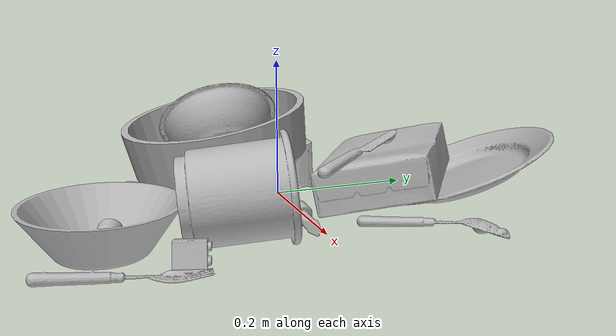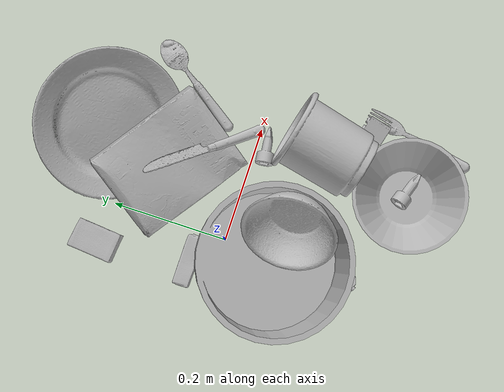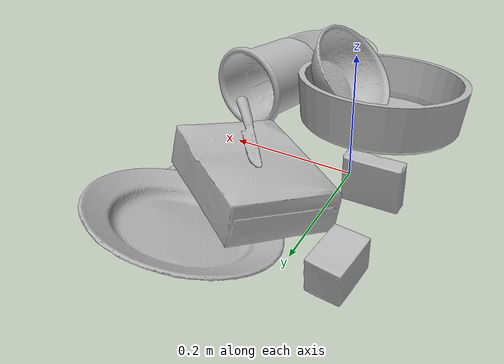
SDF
<sdf version="1.4">
  <world name="default">
    <light name="light1" type="point">
      <pose>0 0 1 0 0 0</pose>
      <diffuse>3 3 3 1</diffuse>
      <specular>3 3 3 1</specular>
    </light>
    <light name="light2" type="point">
      <pose>0 0.5 2 0 0 0</pose>
      <diffuse>1 1 1 1</diffuse>
      <specular>1 1 1 1</specular>
    </light>
    <light name="light3" type="point">
      <pose>0 0.5 2 0 0 0</pose>
      <diffuse>3 3 3 1</diffuse>
      <specular>3 3 3 1</specular>
    </light>
    <scene>
      <ambient>0.7 0.7 0.7</ambient>
    </scene>
    <model name="plate1">
      <link name="link_plate1">
        <collision name="default">
          <geometry>
            <mesh>
              <uri>model://plate/collision_meshes/collision.obj</uri>
              <scale>1.0 1.0 1.0</scale>
            </mesh>
          </geometry>
          <surface>
            <friction>
              <ode>
                <mu>0.5</mu>
                <mu2>0.5</mu2>
              </ode>
            </friction>
          <contact>
        <ode>
            <max_vel>0</max_vel>
            <min_depth>0.0001</min_depth>
            <kp>1e8</kp>
        </ode>
    </contact></surface>
        </collision>
        <visual name="default">
          <geometry>
            <mesh>
              <uri>model://plate/visual_meshes/visual.dae</uri>
              <scale>1.0 1.0 1.0</scale>
            </mesh>
          </geometry>
        </visual>
        <inertial>
          <mass>0.20059238374233246</mass>
          <pose>-0.0006044621695764363 0.00027825910365208983 -0.001056200242601335 0.002218800652723057 -0.0032254723094637602 0.45260588699646775</pose>
          <inertia>
            <ixx>0.00093837525</ixx>
            <iyy>0.0009294</iyy>
            <izz>0.0018353215</izz>
            <ixy>0</ixy>
            <ixz>0</ixz>
            <iyz>0</iyz>
          </inertia>
        </inertial>
      </link>
      <pose>0.12527242302894592 0.2483924776315689 0.042967166751623154 0.35728717116314 -0.1274658786225629 -0.0936527890748937</pose>
    </model>
    <model name="plate2">
      <link name="link_plate2">
        <collision name="default">
          <geometry>
            <mesh>
              <uri>model://pan_tefal/collision_meshes/collision.obj</uri>
              <scale>1.0 1.0 1.0</scale>
            </mesh>
          </geometry>
          <surface>
            <friction>
              <ode>
                <mu>0.5</mu>
                <mu2>0.5</mu2>
              </ode>
            </friction>
          <contact>
        <ode>
            <max_vel>0</max_vel>
            <min_depth>0.0001</min_depth>
            <kp>1e8</kp>
        </ode>
    </contact></surface>
        </collision>
        <visual name="default">
          <geometry>
            <mesh>
              <uri>model://pan_tefal/visual_meshes/visual.dae</uri>
              <scale>1.0 1.0 1.0</scale>
            </mesh>
          </geometry>
        </visual>
        <inertial>
          <mass>0.5801199674606323</mass>
          <pose>-0.00018002555589191616 3.279062366345897e-05 -0.008514936082065105 0.0008190222895173471 -0.0003301392673675887 -0.3318501085377774</pose>
          <inertia>
            <ixx>0.00400454</ixx>
            <iyy>0.004030358</iyy>
            <izz>0.0073715877</izz>
            <ixy>0</ixy>
            <ixz>0</ixz>
            <iyz>0</iyz>
          </inertia>
        </inertial>
      </link>
      <pose>-0.013083591125905514 -0.08641422539949417 0.08942525088787079 0.13123504482527573 -0.11690016700753639 0.879767148141283</pose>
    </model>
    <model name="bowl1">
      <link name="link_bowl1">
        <collision name="default">
          <geometry>
            <mesh>
              <uri>model://bowl/collision_meshes/collision.obj</uri>
              <scale>1.0 1.0 1.0</scale>
            </mesh>
          </geometry>
          <surface>
            <friction>
              <ode>
                <mu>0.5</mu>
                <mu2>0.5</mu2>
              </ode>
            </friction>
          <contact>
        <ode>
            <max_vel>0</max_vel>
            <min_depth>0.0001</min_depth>
            <kp>1e8</kp>
        </ode>
    </contact></surface>
        </collision>
        <visual name="default">
          <geometry>
            <mesh>
              <uri>model://bowl/visual_meshes/visual.dae</uri>
              <scale>1.0 1.0 1.0</scale>
            </mesh>
          </geometry>
        </visual>
        <inertial>
          <mass>0.055578216910362244</mass>
          <pose>0.00020445502013899386 -0.0010302060982212424 -0.000804265437182039 -0.015764048263850368 0.014546844804774466 0.7140432473852318</pose>
          <inertia>
            <ixx>0.00012766755</ixx>
            <iyy>0.000124815</iyy>
            <izz>0.00021478078</izz>
            <ixy>0</ixy>
            <ixz>0</ixz>
            <iyz>0</iyz>
          </inertia>
        </inertial>
      </link>
      <pose>0.05635892227292061 -0.09816696494817734 0.1083502471446991 -0.7880651244756334 -0.21147186440818558 1.3549172133267926</pose>
    </model>
    <model name="bowl2">
      <link name="link_bowl2">
        <collision name="default">
          <geometry>
            <mesh>
              <uri>model://bowl_a/collision_meshes/collision.obj</uri>
              <scale>1.0 1.0 1.0</scale>
            </mesh>
          </geometry>
          <surface>
            <friction>
              <ode>
                <mu>0.5</mu>
                <mu2>0.5</mu2>
              </ode>
            </friction>
          <contact>
        <ode>
            <max_vel>0</max_vel>
            <min_depth>0.0001</min_depth>
            <kp>1e8</kp>
        </ode>
    </contact></surface>
        </collision>
        <visual name="default">
          <geometry>
            <mesh>
              <uri>model://bowl_a/visual_meshes/visual.dae</uri>
              <scale>1.0 1.0 1.0</scale>
            </mesh>
          </geometry>
        </visual>
        <inertial>
          <mass>0.31475314497947693</mass>
          <pose>0.00027867438620887697 4.730821092380211e-05 -0.0013765294570475817 -0.0009805369688078041 -0.0010938258688624044 -0.19123886294168949</pose>
          <inertia>
            <ixx>0.00089611666</ixx>
            <iyy>0.00090161816</iyy>
            <izz>0.0015937777</izz>
            <ixy>0</ixy>
            <ixz>0</ixz>
            <iyz>0</iyz>
          </inertia>
        </inertial>
      </link>
      <pose>0.1651432067155838 -0.27261883020401 0.03038300760090351 -3.9339843453447236e-08 3.3606648547721346e-08 2.9019707074453662</pose>
    </model>
    <model name="silverware1">
      <link name="link_silverware1">
        <collision name="default">
          <geometry>
            <mesh>
              <uri>model://spoon/collision_meshes/collision.obj</uri>
              <scale>1.0 1.0 1.0</scale>
            </mesh>
          </geometry>
          <surface>
            <friction>
              <ode>
                <mu>0.5</mu>
                <mu2>0.5</mu2>
              </ode>
            </friction>
          <contact>
        <ode>
            <max_vel>0</max_vel>
            <min_depth>0.0001</min_depth>
            <kp>1e8</kp>
        </ode>
    </contact></surface>
        </collision>
        <visual name="default">
          <geometry>
            <mesh>
              <uri>model://spoon/visual_meshes/visual.dae</uri>
              <scale>1.0 1.0 1.0</scale>
            </mesh>
          </geometry>
        </visual>
        <inertial>
          <mass>0.019504988566040993</mass>
          <pose>-0.005526313092559576 -0.0016034174477681518 -0.0007271654321812093 0.03521671064592188 -0.039065845080026425 0.006150613244710899</pose>
          <inertia>
            <ixx>1.0848988e-06</ixx>
            <iyy>7.421582e-05</iyy>
            <izz>7.4750846e-05</izz>
            <ixy>0</ixy>
            <ixz>0</ixz>
            <iyz>0</iyz>
          </inertia>
        </inertial>
      </link>
      <pose>0.23956634104251862 0.1294073611497879 0.010133709758520126 3.104956935355799 -0.06197735107081095 0.9615909823485341</pose>
    </model>
    <model name="box1">
      <link name="link_box1">
        <collision name="default">
          <geometry>
            <mesh>
              <uri>model://cracker_box/collision_meshes/collision.obj</uri>
              <scale>1.0 1.0 1.0</scale>
            </mesh>
          </geometry>
          <surface>
            <friction>
              <ode>
                <mu>0.5</mu>
                <mu2>0.5</mu2>
              </ode>
            </friction>
          <contact>
        <ode>
            <max_vel>0</max_vel>
            <min_depth>0.0001</min_depth>
            <kp>1e8</kp>
        </ode>
    </contact></surface>
        </collision>
        <visual name="default">
          <geometry>
            <mesh>
              <uri>model://cracker_box/visual_meshes/visual.dae</uri>
              <scale>1.0 1.0 1.0</scale>
            </mesh>
          </geometry>
        </visual>
        <inertial>
          <mass>2.5078790187835693</mass>
          <pose>0.0009464150061830878 0.00025434247800149024 -0.0017029535956680775 -0.00031620768203149627 -0.01110648960041945 0.002546794303792924</pose>
          <inertia>
            <ixx>0.0063789245</ixx>
            <iyy>0.010532858</iyy>
            <izz>0.015031353</izz>
            <ixy>0</ixy>
            <ixz>0</ixz>
            <iyz>0</iyz>
          </inertia>
        </inertial>
      </link>
      <pose>0.09415781497955322 0.13074110448360443 0.051987677812576294 -0.23675940012362207 -8.870801045290992e-05 2.5261463822886405</pose>
    </model>
    <model name="box2">
      <link name="link_box2">
        <collision name="default">
          <geometry>
            <mesh>
              <uri>model://gelatin_box/collision_meshes/collision.obj</uri>
              <scale>1.0 1.0 1.0</scale>
            </mesh>
          </geometry>
          <surface>
            <friction>
              <ode>
                <mu>0.5</mu>
                <mu2>0.5</mu2>
              </ode>
            </friction>
          <contact>
        <ode>
            <max_vel>0</max_vel>
            <min_depth>0.0001</min_depth>
            <kp>1e8</kp>
        </ode>
    </contact></surface>
        </collision>
        <visual name="default">
          <geometry>
            <mesh>
              <uri>model://gelatin_box/visual_meshes/visual.dae</uri>
              <scale>1.0 1.0 1.0</scale>
            </mesh>
          </geometry>
        </visual>
        <inertial>
          <mass>0.1847851723432541</mass>
          <pose>0.0004319618456065655 0.00011156872642459348 -0.0003640321083366871 -0.001050372098056681 -0.004755818221834168 0.016440563197305347</pose>
          <inertia>
            <ixx>0.00013044327</ixx>
            <iyy>9.317494e-05</iyy>
            <izz>0.0001985637</izz>
            <ixy>0</ixy>
            <ixz>0</ixz>
            <iyz>0</iyz>
          </inertia>
        </inertial>
      </link>
      <pose>-0.05374725162982941 0.04650179669260979 0.036447957158088684 2.2943953545653537 -1.539327550626128 -0.7275927228326703</pose>
    </model>
    <model name="cup1">
      <link name="link_cup1">
        <collision name="default">
          <geometry>
            <mesh>
              <uri>model://d_cups/collision_meshes/collision.obj</uri>
              <scale>2.0 2.0 2.0</scale>
            </mesh>
          </geometry>
          <surface>
            <friction>
              <ode>
                <mu>0.5</mu>
                <mu2>0.5</mu2>
              </ode>
            </friction>
          <contact>
        <ode>
            <max_vel>0</max_vel>
            <min_depth>0.0001</min_depth>
            <kp>1e8</kp>
        </ode>
    </contact></surface>
        </collision>
        <visual name="default">
          <geometry>
            <mesh>
              <uri>model://d_cups/visual_meshes/visual.dae</uri>
              <scale>2.0 2.0 2.0</scale>
            </mesh>
          </geometry>
        </visual>
        <inertial>
          <mass>0.47328615188598633</mass>
          <pose>0.0016136143822222948 0.0038234798703342676 -0.004533303435891867 0.24012870248045765 -0.247092443015796 0.5942312682521343</pose>
          <inertia>
            <ixx>0.0015850074</ixx>
            <iyy>0.0015804201</iyy>
            <izz>0.0014347013</izz>
            <ixy>0</ixy>
            <ixz>0</ixz>
            <iyz>0</iyz>
          </inertia>
        </inertial>
      </link>
      <pose>0.19613713026046753 -0.11595935374498367 0.06490753591060638 1.421122435291208 0.8712972215811554 2.8031944718609445</pose>
    </model>
    <model name="silverware2">
      <link name="link_silverware2">
        <collision name="default">
          <geometry>
            <mesh>
              <uri>model://knife/collision_meshes/collision.obj</uri>
              <scale>1.0 1.0 1.0</scale>
            </mesh>
          </geometry>
          <surface>
            <friction>
              <ode>
                <mu>0.5</mu>
                <mu2>0.5</mu2>
              </ode>
            </friction>
          <contact>
        <ode>
            <max_vel>0</max_vel>
            <min_depth>0.0001</min_depth>
            <kp>1e8</kp>
        </ode>
    </contact></surface>
        </collision>
        <visual name="default">
          <geometry>
            <mesh>
              <uri>model://knife/visual_meshes/visual.dae</uri>
              <scale>1.0 1.0 1.0</scale>
            </mesh>
          </geometry>
        </visual>
        <inertial>
          <mass>0.03430156037211418</mass>
          <pose>-0.02378525398671627 0.0015275129117071629 5.062017953605391e-05 0.07305950900181668 0.01724842494985857 -0.007409825116106198</pose>
          <inertia>
            <ixx>9.736174e-07</ixx>
            <iyy>0.00013178105</iyy>
            <izz>0.00013209462</izz>
            <ixy>0</ixy>
            <ixz>0</ixz>
            <iyz>0</iyz>
          </inertia>
        </inertial>
      </link>
      <pose>0.1305592656135559 0.07910942286252975 0.08717948198318481 -0.004398024445419052 -0.08685234190261164 2.223211018070685</pose>
    </model>
    <model name="silverware3">
      <link name="link_silverware3">
        <collision name="default">
          <geometry>
            <mesh>
              <uri>model://fork/collision_meshes/collision.obj</uri>
              <scale>1.0 1.0 1.0</scale>
            </mesh>
          </geometry>
          <surface>
            <friction>
              <ode>
                <mu>0.5</mu>
                <mu2>0.5</mu2>
              </ode>
            </friction>
          <contact>
        <ode>
            <max_vel>0</max_vel>
            <min_depth>0.0001</min_depth>
            <kp>1e8</kp>
        </ode>
    </contact></surface>
        </collision>
        <visual name="default">
          <geometry>
            <mesh>
              <uri>model://fork/visual_meshes/visual.dae</uri>
              <scale>1.0 1.0 1.0</scale>
            </mesh>
          </geometry>
        </visual>
        <inertial>
          <mass>0.014111565425992012</mass>
          <pose>-0.02957005426287651 0.0004658825055230409 0.00032188615296036005 -0.01355195006397287 -0.010977841645129428 0.014453906946454091</pose>
          <inertia>
            <ixx>4.9469025e-07</ixx>
            <iyy>3.684124e-05</iyy>
            <izz>3.7062495e-05</izz>
            <ixy>0</ixy>
            <ixz>0</ixz>
            <iyz>0</iyz>
          </inertia>
        </inertial>
      </link>
      <pose>0.26440131664276123 -0.26365065574645996 0.005227225832641125 -0.017664883881012946 0.05003607827566225 1.3584649259859336</pose>
    </model>
    <model name="toy1">
      <link name="link_toy1">
        <collision name="default">
          <geometry>
            <mesh>
              <uri>model://b_lego_duplo/collision_meshes/collision.obj</uri>
              <scale>1.0 1.0 1.0</scale>
            </mesh>
          </geometry>
          <surface>
            <friction>
              <ode>
                <mu>0.5</mu>
                <mu2>0.5</mu2>
              </ode>
            </friction>
          <contact>
        <ode>
            <max_vel>0</max_vel>
            <min_depth>0.0001</min_depth>
            <kp>1e8</kp>
        </ode>
    </contact></surface>
        </collision>
        <visual name="default">
          <geometry>
            <mesh>
              <uri>model://b_lego_duplo/visual_meshes/visual.dae</uri>
              <scale>1.0 1.0 1.0</scale>
            </mesh>
          </geometry>
        </visual>
        <inertial>
          <mass>0.029451588168740273</mass>
          <pose>-0.00011053002526750788 -9.152366146736313e-06 0.0019294293597340584 -0.03749525813168218 -0.026353287435260622 0.45191626186006195</pose>
          <inertia>
            <ixx>6.0274892e-06</ixx>
            <iyy>6.0680068e-06</iyy>
            <izz>5.3702943e-06</izz>
            <ixy>0</ixy>
            <ixz>0</ixz>
            <iyz>0</iyz>
          </inertia>
        </inertial>
      </link>
      <pose>0.257998526096344 -0.18524698913097382 0.01984529383480549 -1.6536262985611885 1.2980012193448942 -0.33983194273696865</pose>
    </model>
    <model name="toy2">
      <link name="link_toy2">
        <collision name="default">
          <geometry>
            <mesh>
              <uri>model://foam_brick/collision_meshes/collision.obj</uri>
              <scale>1.0 1.0 1.0</scale>
            </mesh>
          </geometry>
          <surface>
            <friction>
              <ode>
                <mu>0.5</mu>
                <mu2>0.5</mu2>
              </ode>
            </friction>
          <contact>
        <ode>
            <max_vel>0</max_vel>
            <min_depth>0.0001</min_depth>
            <kp>1e8</kp>
        </ode>
    </contact></surface>
        </collision>
        <visual name="default">
          <geometry>
            <mesh>
              <uri>model://foam_brick/visual_meshes/visual.dae</uri>
              <scale>1.0 1.0 1.0</scale>
            </mesh>
          </geometry>
        </visual>
        <inertial>
          <mass>0.2443593144416809</mass>
          <pose>-0.0002522472059354186 0.00034584393142722547 -0.0002532101352699101 -0.2940184651969868 0.017274440266988163 -0.0007449890747987857</pose>
          <inertia>
            <ixx>0.00010674072</ixx>
            <iyy>0.00017041703</iyy>
            <izz>0.00017258283</izz>
            <ixy>0</ixy>
            <ixz>0</ixz>
            <iyz>0</iyz>
          </inertia>
        </inertial>
      </link>
      <pose>-0.06998306512832642 0.20864641666412354 0.025910699740052223 1.5828204939941148 -0.0003754839630284286 1.4814460977943946</pose>
    </model>
    <model name="toy3">
      <link name="link_toy3">
        <collision name="default">
          <geometry>
            <mesh>
              <uri>model://d_lego_duplo/collision_meshes/collision.obj</uri>
              <scale>1.0 1.0 1.0</scale>
            </mesh>
          </geometry>
          <surface>
            <friction>
              <ode>
                <mu>0.5</mu>
                <mu2>0.5</mu2>
              </ode>
            </friction>
          <contact>
        <ode>
            <max_vel>0</max_vel>
            <min_depth>0.0001</min_depth>
            <kp>1e8</kp>
        </ode>
    </contact></surface>
        </collision>
        <visual name="default">
          <geometry>
            <mesh>
              <uri>model://d_lego_duplo/visual_meshes/visual.dae</uri>
              <scale>1.0 1.0 1.0</scale>
            </mesh>
          </geometry>
        </visual>
        <inertial>
          <mass>0.033699363470077515</mass>
          <pose>0.002830563113093376 0.0001636613014852628 0.0008589802891947329 0.08010879334546937 -0.38355231252286476 0.0010296922462193392</pose>
          <inertia>
            <ixx>6.5236977e-06</ixx>
            <iyy>9.258897e-06</iyy>
            <izz>8.928908e-06</izz>
            <ixy>0</ixy>
            <ixz>0</ixz>
            <iyz>0</iyz>
          </inertia>
        </inertial>
      </link>
      <pose>-0.0021855663508176804 -0.2147696316242218 0.01641189306974411 -1.5621994743975522 -0.0006390421207024145 2.598804573026971</pose>
    </model>
    <model name="toy4">
      <link name="link_toy4">
        <collision name="default">
          <geometry>
            <mesh>
              <uri>model://d_toy_airplane/collision_meshes/collision.obj</uri>
              <scale>1.0 1.0 1.0</scale>
            </mesh>
          </geometry>
          <surface>
            <friction>
              <ode>
                <mu>0.5</mu>
                <mu2>0.5</mu2>
              </ode>
            </friction>
          <contact>
        <ode>
            <max_vel>0</max_vel>
            <min_depth>0.0001</min_depth>
            <kp>1e8</kp>
        </ode>
    </contact></surface>
        </collision>
        <visual name="default">
          <geometry>
            <mesh>
              <uri>model://d_toy_airplane/visual_meshes/visual.dae</uri>
              <scale>1.0 1.0 1.0</scale>
            </mesh>
          </geometry>
        </visual>
        <inertial>
          <mass>0.016584575176239014</mass>
          <pose>9.410303027834743e-05 -5.809338472317904e-05 -0.01172809861600399 0.0002669776058846709 0.004678969238403601 0.5194647440200774</pose>
          <inertia>
            <ixx>4.9717323e-06</ixx>
            <iyy>4.975482e-06</iyy>
            <izz>1.5009987e-06</izz>
            <ixy>0</ixy>
            <ixz>0</ixz>
            <iyz>0</iyz>
          </inertia>
        </inertial>
      </link>
      <pose>0.1792336404323578 -0.27153822779655457 0.01587020419538021 -2.3016060637990123 1.245586741580335 -2.6105364499062693</pose>
    </model>
    <model name="toy5">
      <link name="link_toy5">
        <collision name="default">
          <geometry>
            <mesh>
              <uri>model://e_toy_airplane/collision_meshes/collision.obj</uri>
              <scale>1.0 1.0 1.0</scale>
            </mesh>
          </geometry>
          <surface>
            <friction>
              <ode>
                <mu>0.5</mu>
                <mu2>0.5</mu2>
              </ode>
            </friction>
          <contact>
        <ode>
            <max_vel>0</max_vel>
            <min_depth>0.0001</min_depth>
            <kp>1e8</kp>
        </ode>
    </contact></surface>
        </collision>
        <visual name="default">
          <geometry>
            <mesh>
              <uri>model://e_toy_airplane/visual_meshes/visual.dae</uri>
              <scale>1.0 1.0 1.0</scale>
            </mesh>
          </geometry>
        </visual>
        <inertial>
          <mass>0.01714155077934265</mass>
          <pose>0.00011740483023459092 -2.2482887288788334e-05 -0.011187203228473663 0.005518467343725363 0.009228313895921611 0.15041273076279138</pose>
          <inertia>
            <ixx>5.2317982e-06</ixx>
            <iyy>5.178279e-06</iyy>
            <izz>1.5723607e-06</izz>
            <ixy>0</ixy>
            <ixz>0</ixz>
            <iyz>0</iyz>
          </inertia>
        </inertial>
      </link>
      <pose>0.17565667629241943 -0.017815856263041496 0.01236477680504322 1.753284844913194 0.375580287539928 1.7658399560735163</pose>
    </model>
  <physics type="ode">
      <max_contacts>50</max_contacts>
      <ode>
        <solver>
          <type>quick</type>
          <iters>75</iters>
        </solver>
        <constraints>
          <contact_max_correcting_vel>0</contact_max_correcting_vel>
          <contact_surface_layer>0</contact_surface_layer>
        </constraints>
      </ode>
    </physics></world>
</sdf>
